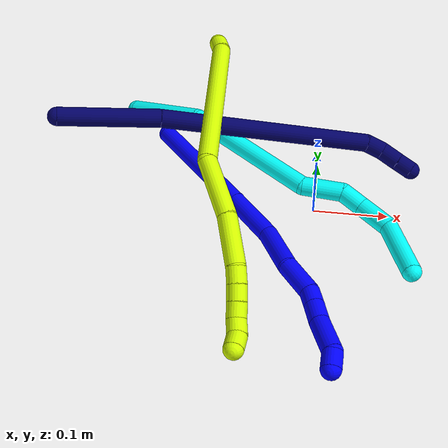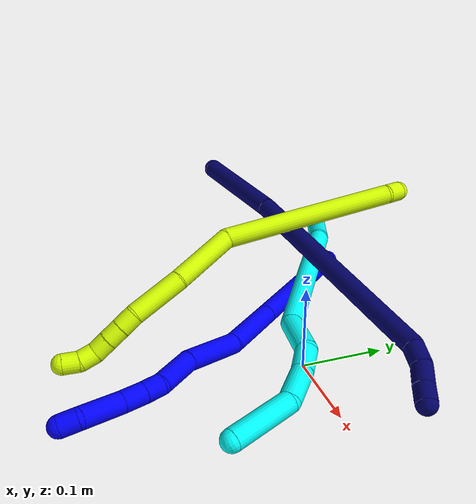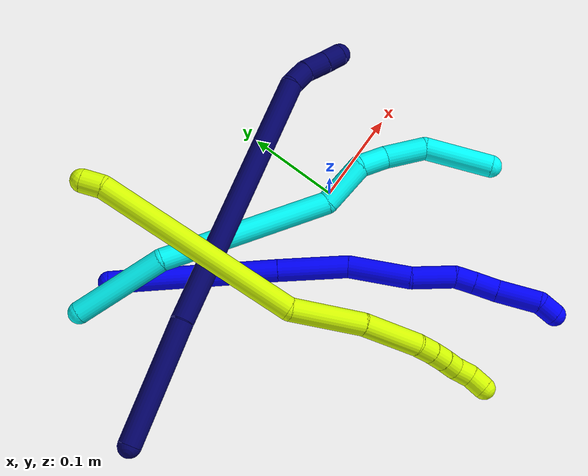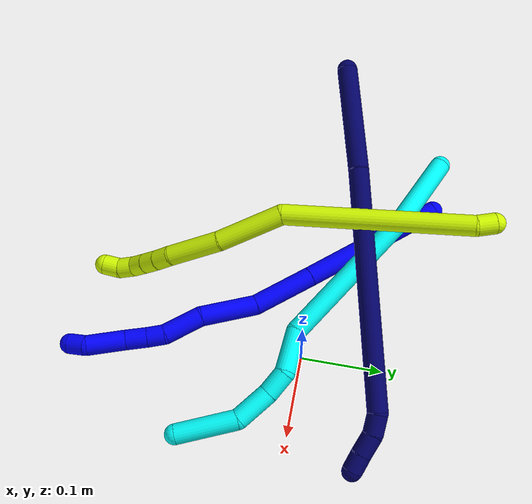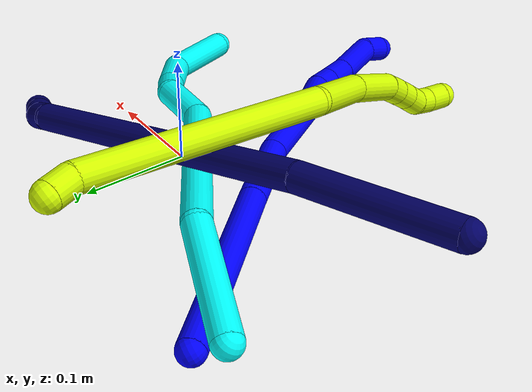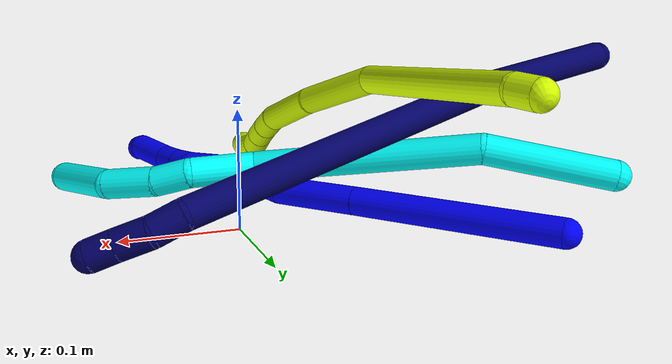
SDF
<sdf version="1.7">
 <world name="default">
  <model name="1">
   <static>0</static>
   <link name="1">
    <collision name="collision-cylinder-e_1_1_4">
     <pose>0.06777 -0.046872 0.042314 0.836464 0.820705 0.382005</pose>
     <geometry><cylinder><radius>0.0125</radius><length>0.185259</length></cylinder></geometry>
     <surface>
      <friction><ode><mu>1.16</mu><mu2>1.16</mu2><slip1>0</slip1><slip2>0</slip2></ode></friction>
      <contact><ode><kp>1e+06</kp><kd>1</kd><max_vel>0</max_vel><min_depth>0.001</min_depth></ode></contact>
     </surface>
    </collision>
    <visual name="visual-cylinder-e_1_1_4">
     <pose>0.06777 -0.046872 0.042314 0.836464 0.820705 0.382005</pose>
     <geometry><cylinder><radius>0.0125</radius><length>0.185259</length></cylinder></geometry>
     <material><ambient>0 0 1 1</ambient></material>
    </visual>
    <collision name="collision-cylinder-e_2_4_5">
     <pose>0.163566 -0.113989 0.102749 0.840682 0.800877 0.374003</pose>
     <geometry><cylinder><radius>0.0125</radius><length>0.078068</length></cylinder></geometry>
     <surface>
      <friction><ode><mu>1.16</mu><mu2>1.16</mu2><slip1>0</slip1><slip2>0</slip2></ode></friction>
      <contact><ode><kp>1e+06</kp><kd>1</kd><max_vel>0</max_vel><min_depth>0.001</min_depth></ode></contact>
     </surface>
    </collision>
    <visual name="visual-cylinder-e_2_4_5">
     <pose>0.163566 -0.113989 0.102749 0.840682 0.800877 0.374003</pose>
     <geometry><cylinder><radius>0.0125</radius><length>0.078068</length></cylinder></geometry>
     <material><ambient>0 0 1 1</ambient></material>
    </visual>
    <collision name="collision-cylinder-e_3_5_6">
     <pose>0.21223 -0.149233 0.144991 0.556344 0.628389 0.185071</pose>
     <geometry><cylinder><radius>0.0125</radius><length>0.070221</length></cylinder></geometry>
     <surface>
      <friction><ode><mu>1.16</mu><mu2>1.16</mu2><slip1>0</slip1><slip2>0</slip2></ode></friction>
      <contact><ode><kp>1e+06</kp><kd>1</kd><max_vel>0</max_vel><min_depth>0.001</min_depth></ode></contact>
     </surface>
    </collision>
    <visual name="visual-cylinder-e_3_5_6">
     <pose>0.21223 -0.149233 0.144991 0.556344 0.628389 0.185071</pose>
     <geometry><cylinder><radius>0.0125</radius><length>0.070221</length></cylinder></geometry>
     <material><ambient>0 0 1 1</ambient></material>
    </visual>
    <collision name="collision-cylinder-e_4_6_7">
     <pose>0.249468 -0.177711 0.180366 0.875044 0.757257 0.36796</pose>
     <geometry><cylinder><radius>0.0125</radius><length>0.048325</length></cylinder></geometry>
     <surface>
      <friction><ode><mu>1.16</mu><mu2>1.16</mu2><slip1>0</slip1><slip2>0</slip2></ode></friction>
      <contact><ode><kp>1e+06</kp><kd>1</kd><max_vel>0</max_vel><min_depth>0.001</min_depth></ode></contact>
     </surface>
    </collision>
    <visual name="visual-cylinder-e_4_6_7">
     <pose>0.249468 -0.177711 0.180366 0.875044 0.757257 0.36796</pose>
     <geometry><cylinder><radius>0.0125</radius><length>0.048325</length></cylinder></geometry>
     <material><ambient>0 0 1 1</ambient></material>
    </visual>
    <collision name="collision-cylinder-e_5_7_8">
     <pose>0.270788 -0.197475 0.199018 0.704364 0.45272 0.168875</pose>
     <geometry><cylinder><radius>0.0125</radius><length>0.02159</length></cylinder></geometry>
     <surface>
      <friction><ode><mu>1.16</mu><mu2>1.16</mu2><slip1>0</slip1><slip2>0</slip2></ode></friction>
      <contact><ode><kp>1e+06</kp><kd>1</kd><max_vel>0</max_vel><min_depth>0.001</min_depth></ode></contact>
     </surface>
    </collision>
    <visual name="visual-cylinder-e_5_7_8">
     <pose>0.270788 -0.197475 0.199018 0.704364 0.45272 0.168875</pose>
     <geometry><cylinder><radius>0.0125</radius><length>0.02159</length></cylinder></geometry>
     <material><ambient>0 0 1 1</ambient></material>
    </visual>
    <collision name="collision-cylinder-e_6_8_9">
     <pose>0.281226 -0.21108 0.216055 0.64933 0.441247 0.150684</pose>
     <geometry><cylinder><radius>0.0125</radius><length>0.02677</length></cylinder></geometry>
     <surface>
      <friction><ode><mu>1.16</mu><mu2>1.16</mu2><slip1>0</slip1><slip2>0</slip2></ode></friction>
      <contact><ode><kp>1e+06</kp><kd>1</kd><max_vel>0</max_vel><min_depth>0.001</min_depth></ode></contact>
     </surface>
    </collision>
    <visual name="visual-cylinder-e_6_8_9">
     <pose>0.281226 -0.21108 0.216055 0.64933 0.441247 0.150684</pose>
     <geometry><cylinder><radius>0.0125</radius><length>0.02677</length></cylinder></geometry>
     <material><ambient>0 0 1 1</ambient></material>
    </visual>
    <collision name="collision-cylinder-e_7_9_10">
     <pose>0.299183 -0.229556 0.243227 0.566821 0.532305 0.158469</pose>
     <geometry><cylinder><radius>0.0125</radius><length>0.048237</length></cylinder></geometry>
     <surface>
      <friction><ode><mu>1.16</mu><mu2>1.16</mu2><slip1>0</slip1><slip2>0</slip2></ode></friction>
      <contact><ode><kp>1e+06</kp><kd>1</kd><max_vel>0</max_vel><min_depth>0.001</min_depth></ode></contact>
     </surface>
    </collision>
    <visual name="visual-cylinder-e_7_9_10">
     <pose>0.299183 -0.229556 0.243227 0.566821 0.532305 0.158469</pose>
     <geometry><cylinder><radius>0.0125</radius><length>0.048237</length></cylinder></geometry>
     <material><ambient>0 0 1 1</ambient></material>
    </visual>
    <collision name="collision-cylinder-e_8_10_2">
     <pose>0.312108 -0.247802 0.268832 0.720371 0.063621 0.023968</pose>
     <geometry><cylinder><radius>0.0125</radius><length>0.021529</length></cylinder></geometry>
     <surface>
      <friction><ode><mu>1.16</mu><mu2>1.16</mu2><slip1>0</slip1><slip2>0</slip2></ode></friction>
      <contact><ode><kp>1e+06</kp><kd>1</kd><max_vel>0</max_vel><min_depth>0.001</min_depth></ode></contact>
     </surface>
    </collision>
    <visual name="visual-cylinder-e_8_10_2">
     <pose>0.312108 -0.247802 0.268832 0.720371 0.063621 0.023968</pose>
     <geometry><cylinder><radius>0.0125</radius><length>0.021529</length></cylinder></geometry>
     <material><ambient>0 0 1 1</ambient></material>
    </visual>
    <collision name="collision-sphere-2">
     <pose>0.312792 -0.254888 0.276906 0 -0 0</pose>
     <geometry><sphere><radius>0.0125</radius></sphere></geometry>
     <surface>
      <friction><ode><mu>1.16</mu><mu2>1.16</mu2><slip1>0</slip1><slip2>0</slip2></ode></friction>
      <contact><ode><kp>1e+06</kp><kd>1</kd><max_vel>0</max_vel><min_depth>0.001</min_depth></ode></contact>
     </surface>
    </collision>
    <visual name="visual-sphere-2">
     <pose>0.312792 -0.254888 0.276906 0 -0 0</pose>
     <geometry><sphere><radius>0.0125</radius></sphere></geometry>
     <material><ambient>0 0 1 1</ambient></material>
    </visual>
    <collision name="collision-sphere-10">
     <pose>0.311424 -0.240715 0.260758 0 -0 0</pose>
     <geometry><sphere><radius>0.0125</radius></sphere></geometry>
     <surface>
      <friction><ode><mu>1.16</mu><mu2>1.16</mu2><slip1>0</slip1><slip2>0</slip2></ode></friction>
      <contact><ode><kp>1e+06</kp><kd>1</kd><max_vel>0</max_vel><min_depth>0.001</min_depth></ode></contact>
     </surface>
    </collision>
    <visual name="visual-sphere-10">
     <pose>0.311424 -0.240715 0.260758 0 -0 0</pose>
     <geometry><sphere><radius>0.0125</radius></sphere></geometry>
     <material><ambient>0 0 1 1</ambient></material>
    </visual>
    <collision name="collision-sphere-9">
     <pose>0.286942 -0.218398 0.225695 0 -0 0</pose>
     <geometry><sphere><radius>0.0125</radius></sphere></geometry>
     <surface>
      <friction><ode><mu>1.16</mu><mu2>1.16</mu2><slip1>0</slip1><slip2>0</slip2></ode></friction>
      <contact><ode><kp>1e+06</kp><kd>1</kd><max_vel>0</max_vel><min_depth>0.001</min_depth></ode></contact>
     </surface>
    </collision>
    <visual name="visual-sphere-9">
     <pose>0.286942 -0.218398 0.225695 0 -0 0</pose>
     <geometry><sphere><radius>0.0125</radius></sphere></geometry>
     <material><ambient>0 0 1 1</ambient></material>
    </visual>
    <collision name="collision-sphere-4">
     <pose>0.13554 -0.093744 0.084627 0 -0 0</pose>
     <geometry><sphere><radius>0.0125</radius></sphere></geometry>
     <surface>
      <friction><ode><mu>1.16</mu><mu2>1.16</mu2><slip1>0</slip1><slip2>0</slip2></ode></friction>
      <contact><ode><kp>1e+06</kp><kd>1</kd><max_vel>0</max_vel><min_depth>0.001</min_depth></ode></contact>
     </surface>
    </collision>
    <visual name="visual-sphere-4">
     <pose>0.13554 -0.093744 0.084627 0 -0 0</pose>
     <geometry><sphere><radius>0.0125</radius></sphere></geometry>
     <material><ambient>0 0 1 1</ambient></material>
    </visual>
    <collision name="collision-sphere-1">
     <geometry><sphere><radius>0.0125</radius></sphere></geometry>
     <surface>
      <friction><ode><mu>1.16</mu><mu2>1.16</mu2><slip1>0</slip1><slip2>0</slip2></ode></friction>
      <contact><ode><kp>1e+06</kp><kd>1</kd><max_vel>0</max_vel><min_depth>0.001</min_depth></ode></contact>
     </surface>
    </collision>
    <visual name="visual-sphere-1">
     <geometry><sphere><radius>0.0125</radius></sphere></geometry>
     <material><ambient>0 0 1 1</ambient></material>
    </visual>
    <collision name="collision-sphere-8">
     <pose>0.27551 -0.203761 0.206416 0 -0 0</pose>
     <geometry><sphere><radius>0.0125</radius></sphere></geometry>
     <surface>
      <friction><ode><mu>1.16</mu><mu2>1.16</mu2><slip1>0</slip1><slip2>0</slip2></ode></friction>
      <contact><ode><kp>1e+06</kp><kd>1</kd><max_vel>0</max_vel><min_depth>0.001</min_depth></ode></contact>
     </surface>
    </collision>
    <visual name="visual-sphere-8">
     <pose>0.27551 -0.203761 0.206416 0 -0 0</pose>
     <geometry><sphere><radius>0.0125</radius></sphere></geometry>
     <material><ambient>0 0 1 1</ambient></material>
    </visual>
    <collision name="collision-sphere-5">
     <pose>0.191591 -0.134234 0.120871 0 -0 0</pose>
     <geometry><sphere><radius>0.0125</radius></sphere></geometry>
     <surface>
      <friction><ode><mu>1.16</mu><mu2>1.16</mu2><slip1>0</slip1><slip2>0</slip2></ode></friction>
      <contact><ode><kp>1e+06</kp><kd>1</kd><max_vel>0</max_vel><min_depth>0.001</min_depth></ode></contact>
     </surface>
    </collision>
    <visual name="visual-sphere-5">
     <pose>0.191591 -0.134234 0.120871 0 -0 0</pose>
     <geometry><sphere><radius>0.0125</radius></sphere></geometry>
     <material><ambient>0 0 1 1</ambient></material>
    </visual>
    <collision name="collision-sphere-6">
     <pose>0.23287 -0.164233 0.169111 0 -0 0</pose>
     <geometry><sphere><radius>0.0125</radius></sphere></geometry>
     <surface>
      <friction><ode><mu>1.16</mu><mu2>1.16</mu2><slip1>0</slip1><slip2>0</slip2></ode></friction>
      <contact><ode><kp>1e+06</kp><kd>1</kd><max_vel>0</max_vel><min_depth>0.001</min_depth></ode></contact>
     </surface>
    </collision>
    <visual name="visual-sphere-6">
     <pose>0.23287 -0.164233 0.169111 0 -0 0</pose>
     <geometry><sphere><radius>0.0125</radius></sphere></geometry>
     <material><ambient>0 0 1 1</ambient></material>
    </visual>
    <collision name="collision-sphere-7">
     <pose>0.266066 -0.191189 0.191621 0 -0 0</pose>
     <geometry><sphere><radius>0.0125</radius></sphere></geometry>
     <surface>
      <friction><ode><mu>1.16</mu><mu2>1.16</mu2><slip1>0</slip1><slip2>0</slip2></ode></friction>
      <contact><ode><kp>1e+06</kp><kd>1</kd><max_vel>0</max_vel><min_depth>0.001</min_depth></ode></contact>
     </surface>
    </collision>
    <visual name="visual-sphere-7">
     <pose>0.266066 -0.191189 0.191621 0 -0 0</pose>
     <geometry><sphere><radius>0.0125</radius></sphere></geometry>
     <material><ambient>0 0 1 1</ambient></material>
    </visual>
    <inertial>
     <pose>0.173618 -0.125944 0.124718 0 -0 0</pose>
     <mass>0.5</mass>
     <inertia>
      <ixx>0.000597</ixx>
      <ixy>0</ixy>
      <ixz>0</ixz>
      <iyy>0.000667</iyy>
      <iyz>0</iyz>
      <izz>-0.000114</izz>
     </inertia>
    </inertial>
   </link>
   <pose>-0.224468 0.135228 0.011497 1.12927 -0.348916 -0.186712</pose>
  </model>
  <model name="3">
   <static>0</static>
   <link name="3">
    <collision name="collision-cylinder-e_1_1_4">
     <pose>0.050292 -0.016679 -0.002165 1.69991 1.24806 1.37308</pose>
     <geometry><cylinder><radius>0.0125</radius><length>0.106059</length></cylinder></geometry>
     <surface>
      <friction><ode><mu>1.16</mu><mu2>1.16</mu2><slip1>0</slip1><slip2>0</slip2></ode></friction>
      <contact><ode><kp>1e+06</kp><kd>1</kd><max_vel>0</max_vel><min_depth>0.001</min_depth></ode></contact>
     </surface>
    </collision>
    <visual name="visual-cylinder-e_1_1_4">
     <pose>0.050292 -0.016679 -0.002165 1.69991 1.24806 1.37308</pose>
     <geometry><cylinder><radius>0.0125</radius><length>0.106059</length></cylinder></geometry>
     <material><ambient>0.003922 1 0.996078 1</ambient></material>
    </visual>
    <collision name="collision-cylinder-e_2_4_5">
     <pose>0.173352 -0.088854 -0.025682 1.93808 0.885702 1.20882</pose>
     <geometry><cylinder><radius>0.0125</radius><length>0.187946</length></cylinder></geometry>
     <surface>
      <friction><ode><mu>1.16</mu><mu2>1.16</mu2><slip1>0</slip1><slip2>0</slip2></ode></friction>
      <contact><ode><kp>1e+06</kp><kd>1</kd><max_vel>0</max_vel><min_depth>0.001</min_depth></ode></contact>
     </surface>
    </collision>
    <visual name="visual-cylinder-e_2_4_5">
     <pose>0.173352 -0.088854 -0.025682 1.93808 0.885702 1.20882</pose>
     <geometry><cylinder><radius>0.0125</radius><length>0.187946</length></cylinder></geometry>
     <material><ambient>0.003922 1 0.996078 1</ambient></material>
    </visual>
    <collision name="collision-cylinder-e_3_5_6">
     <pose>0.270776 -0.14806 -0.057041 2.7865 1.16225 2.60819</pose>
     <geometry><cylinder><radius>0.0125</radius><length>0.053731</length></cylinder></geometry>
     <surface>
      <friction><ode><mu>1.16</mu><mu2>1.16</mu2><slip1>0</slip1><slip2>0</slip2></ode></friction>
      <contact><ode><kp>1e+06</kp><kd>1</kd><max_vel>0</max_vel><min_depth>0.001</min_depth></ode></contact>
     </surface>
    </collision>
    <visual name="visual-cylinder-e_3_5_6">
     <pose>0.270776 -0.14806 -0.057041 2.7865 1.16225 2.60819</pose>
     <geometry><cylinder><radius>0.0125</radius><length>0.053731</length></cylinder></geometry>
     <material><ambient>0.003922 1 0.996078 1</ambient></material>
    </visual>
    <collision name="collision-cylinder-e_4_6_7">
     <pose>0.30627 -0.161033 -0.07269 2.11793 0.785118 1.27033</pose>
     <geometry><cylinder><radius>0.0125</radius><length>0.030669</length></cylinder></geometry>
     <surface>
      <friction><ode><mu>1.16</mu><mu2>1.16</mu2><slip1>0</slip1><slip2>0</slip2></ode></friction>
      <contact><ode><kp>1e+06</kp><kd>1</kd><max_vel>0</max_vel><min_depth>0.001</min_depth></ode></contact>
     </surface>
    </collision>
    <visual name="visual-cylinder-e_4_6_7">
     <pose>0.30627 -0.161033 -0.07269 2.11793 0.785118 1.27033</pose>
     <geometry><cylinder><radius>0.0125</radius><length>0.030669</length></cylinder></geometry>
     <material><ambient>0.003922 1 0.996078 1</ambient></material>
    </visual>
    <collision name="collision-cylinder-e_5_7_8">
     <pose>0.333764 -0.185638 -0.082458 1.83344 0.808941 1.01848</pose>
     <geometry><cylinder><radius>0.0125</radius><length>0.046032</length></cylinder></geometry>
     <surface>
      <friction><ode><mu>1.16</mu><mu2>1.16</mu2><slip1>0</slip1><slip2>0</slip2></ode></friction>
      <contact><ode><kp>1e+06</kp><kd>1</kd><max_vel>0</max_vel><min_depth>0.001</min_depth></ode></contact>
     </surface>
    </collision>
    <visual name="visual-cylinder-e_5_7_8">
     <pose>0.333764 -0.185638 -0.082458 1.83344 0.808941 1.01848</pose>
     <geometry><cylinder><radius>0.0125</radius><length>0.046032</length></cylinder></geometry>
     <material><ambient>0.003922 1 0.996078 1</ambient></material>
    </visual>
    <collision name="collision-cylinder-e_6_8_2">
     <pose>0.365666 -0.235334 -0.082739 1.45937 0.41545 0.372622</pose>
     <geometry><cylinder><radius>0.0125</radius><length>0.075563</length></cylinder></geometry>
     <surface>
      <friction><ode><mu>1.16</mu><mu2>1.16</mu2><slip1>0</slip1><slip2>0</slip2></ode></friction>
      <contact><ode><kp>1e+06</kp><kd>1</kd><max_vel>0</max_vel><min_depth>0.001</min_depth></ode></contact>
     </surface>
    </collision>
    <visual name="visual-cylinder-e_6_8_2">
     <pose>0.365666 -0.235334 -0.082739 1.45937 0.41545 0.372622</pose>
     <geometry><cylinder><radius>0.0125</radius><length>0.075563</length></cylinder></geometry>
     <material><ambient>0.003922 1 0.996078 1</ambient></material>
    </visual>
    <collision name="collision-sphere-2">
     <pose>0.380914 -0.269687 -0.078895 0 -0 0</pose>
     <geometry><sphere><radius>0.0125</radius></sphere></geometry>
     <surface>
      <friction><ode><mu>1.16</mu><mu2>1.16</mu2><slip1>0</slip1><slip2>0</slip2></ode></friction>
      <contact><ode><kp>1e+06</kp><kd>1</kd><max_vel>0</max_vel><min_depth>0.001</min_depth></ode></contact>
     </surface>
    </collision>
    <visual name="visual-sphere-2">
     <pose>0.380914 -0.269687 -0.078895 0 -0 0</pose>
     <geometry><sphere><radius>0.0125</radius></sphere></geometry>
     <material><ambient>0.003922 1 0.996078 1</ambient></material>
    </visual>
    <collision name="collision-sphere-4">
     <pose>0.100584 -0.033358 -0.004331 0 -0 0</pose>
     <geometry><sphere><radius>0.0125</radius></sphere></geometry>
     <surface>
      <friction><ode><mu>1.16</mu><mu2>1.16</mu2><slip1>0</slip1><slip2>0</slip2></ode></friction>
      <contact><ode><kp>1e+06</kp><kd>1</kd><max_vel>0</max_vel><min_depth>0.001</min_depth></ode></contact>
     </surface>
    </collision>
    <visual name="visual-sphere-4">
     <pose>0.100584 -0.033358 -0.004331 0 -0 0</pose>
     <geometry><sphere><radius>0.0125</radius></sphere></geometry>
     <material><ambient>0.003922 1 0.996078 1</ambient></material>
    </visual>
    <collision name="collision-sphere-1">
     <geometry><sphere><radius>0.0125</radius></sphere></geometry>
     <surface>
      <friction><ode><mu>1.16</mu><mu2>1.16</mu2><slip1>0</slip1><slip2>0</slip2></ode></friction>
      <contact><ode><kp>1e+06</kp><kd>1</kd><max_vel>0</max_vel><min_depth>0.001</min_depth></ode></contact>
     </surface>
    </collision>
    <visual name="visual-sphere-1">
     <geometry><sphere><radius>0.0125</radius></sphere></geometry>
     <material><ambient>0.003922 1 0.996078 1</ambient></material>
    </visual>
    <collision name="collision-sphere-8">
     <pose>0.350417 -0.200981 -0.086583 0 -0 0</pose>
     <geometry><sphere><radius>0.0125</radius></sphere></geometry>
     <surface>
      <friction><ode><mu>1.16</mu><mu2>1.16</mu2><slip1>0</slip1><slip2>0</slip2></ode></friction>
      <contact><ode><kp>1e+06</kp><kd>1</kd><max_vel>0</max_vel><min_depth>0.001</min_depth></ode></contact>
     </surface>
    </collision>
    <visual name="visual-sphere-8">
     <pose>0.350417 -0.200981 -0.086583 0 -0 0</pose>
     <geometry><sphere><radius>0.0125</radius></sphere></geometry>
     <material><ambient>0.003922 1 0.996078 1</ambient></material>
    </visual>
    <collision name="collision-sphere-5">
     <pose>0.246121 -0.144349 -0.047033 0 -0 0</pose>
     <geometry><sphere><radius>0.0125</radius></sphere></geometry>
     <surface>
      <friction><ode><mu>1.16</mu><mu2>1.16</mu2><slip1>0</slip1><slip2>0</slip2></ode></friction>
      <contact><ode><kp>1e+06</kp><kd>1</kd><max_vel>0</max_vel><min_depth>0.001</min_depth></ode></contact>
     </surface>
    </collision>
    <visual name="visual-sphere-5">
     <pose>0.246121 -0.144349 -0.047033 0 -0 0</pose>
     <geometry><sphere><radius>0.0125</radius></sphere></geometry>
     <material><ambient>0.003922 1 0.996078 1</ambient></material>
    </visual>
    <collision name="collision-sphere-6">
     <pose>0.29543 -0.151771 -0.067048 0 -0 0</pose>
     <geometry><sphere><radius>0.0125</radius></sphere></geometry>
     <surface>
      <friction><ode><mu>1.16</mu><mu2>1.16</mu2><slip1>0</slip1><slip2>0</slip2></ode></friction>
      <contact><ode><kp>1e+06</kp><kd>1</kd><max_vel>0</max_vel><min_depth>0.001</min_depth></ode></contact>
     </surface>
    </collision>
    <visual name="visual-sphere-6">
     <pose>0.29543 -0.151771 -0.067048 0 -0 0</pose>
     <geometry><sphere><radius>0.0125</radius></sphere></geometry>
     <material><ambient>0.003922 1 0.996078 1</ambient></material>
    </visual>
    <collision name="collision-sphere-7">
     <pose>0.31711 -0.170296 -0.078333 0 -0 0</pose>
     <geometry><sphere><radius>0.0125</radius></sphere></geometry>
     <surface>
      <friction><ode><mu>1.16</mu><mu2>1.16</mu2><slip1>0</slip1><slip2>0</slip2></ode></friction>
      <contact><ode><kp>1e+06</kp><kd>1</kd><max_vel>0</max_vel><min_depth>0.001</min_depth></ode></contact>
     </surface>
    </collision>
    <visual name="visual-sphere-7">
     <pose>0.31711 -0.170296 -0.078333 0 -0 0</pose>
     <geometry><sphere><radius>0.0125</radius></sphere></geometry>
     <material><ambient>0.003922 1 0.996078 1</ambient></material>
    </visual>
    <inertial>
     <pose>0.209703 -0.115381 -0.040797 0 -0 0</pose>
     <mass>0.5</mass>
     <inertia>
      <ixx>0.000582</ixx>
      <ixy>0</ixy>
      <ixz>0</ixz>
      <iyy>0.000798</iyy>
      <iyz>0</iyz>
      <izz>-0.000168</izz>
     </inertia>
    </inertial>
   </link>
   <pose>-0.267892 0.133695 0.053605 0.406775 -0.373063 -0.110128</pose>
  </model>
  <model name="7">
   <static>0</static>
   <link name="7">
    <collision name="collision-cylinder-e_1_1_4">
     <pose>0.02952 0.025543 -0.055235 -2.70844 0.451642 -1.61397</pose>
     <geometry><cylinder><radius>0.0125</radius><length>0.135275</length></cylinder></geometry>
     <surface>
      <friction><ode><mu>1.16</mu><mu2>1.16</mu2><slip1>0</slip1><slip2>0</slip2></ode></friction>
      <contact><ode><kp>1e+06</kp><kd>1</kd><max_vel>0</max_vel><min_depth>0.001</min_depth></ode></contact>
     </surface>
    </collision>
    <visual name="visual-cylinder-e_1_1_4">
     <pose>0.02952 0.025543 -0.055235 -2.70844 0.451642 -1.61397</pose>
     <geometry><cylinder><radius>0.0125</radius><length>0.135275</length></cylinder></geometry>
     <material><ambient>0.003922 0 0.403922 1</ambient></material>
    </visual>
    <collision name="collision-cylinder-e_2_4_5">
     <pose>0.116095 0.093927 -0.237444 -2.81619 0.40252 -1.78654</pose>
     <geometry><cylinder><radius>0.0125</radius><length>0.291293</length></cylinder></geometry>
     <surface>
      <friction><ode><mu>1.16</mu><mu2>1.16</mu2><slip1>0</slip1><slip2>0</slip2></ode></friction>
      <contact><ode><kp>1e+06</kp><kd>1</kd><max_vel>0</max_vel><min_depth>0.001</min_depth></ode></contact>
     </surface>
    </collision>
    <visual name="visual-cylinder-e_2_4_5">
     <pose>0.116095 0.093927 -0.237444 -2.81619 0.40252 -1.78654</pose>
     <geometry><cylinder><radius>0.0125</radius><length>0.291293</length></cylinder></geometry>
     <material><ambient>0.003922 0 0.403922 1</ambient></material>
    </visual>
    <collision name="collision-cylinder-e_3_5_6">
     <pose>0.178784 0.136019 -0.375676 3.0752 0.463036 2.86169</pose>
     <geometry><cylinder><radius>0.0125</radius><length>0.025223</length></cylinder></geometry>
     <surface>
      <friction><ode><mu>1.16</mu><mu2>1.16</mu2><slip1>0</slip1><slip2>0</slip2></ode></friction>
      <contact><ode><kp>1e+06</kp><kd>1</kd><max_vel>0</max_vel><min_depth>0.001</min_depth></ode></contact>
     </surface>
    </collision>
    <visual name="visual-cylinder-e_3_5_6">
     <pose>0.178784 0.136019 -0.375676 3.0752 0.463036 2.86169</pose>
     <geometry><cylinder><radius>0.0125</radius><length>0.025223</length></cylinder></geometry>
     <material><ambient>0.003922 0 0.403922 1</ambient></material>
    </visual>
    <collision name="collision-cylinder-e_4_6_7">
     <pose>0.192556 0.131708 -0.396764 2.79395 0.661499 2.19616</pose>
     <geometry><cylinder><radius>0.0125</radius><length>0.026498</length></cylinder></geometry>
     <surface>
      <friction><ode><mu>1.16</mu><mu2>1.16</mu2><slip1>0</slip1><slip2>0</slip2></ode></friction>
      <contact><ode><kp>1e+06</kp><kd>1</kd><max_vel>0</max_vel><min_depth>0.001</min_depth></ode></contact>
     </surface>
    </collision>
    <visual name="visual-cylinder-e_4_6_7">
     <pose>0.192556 0.131708 -0.396764 2.79395 0.661499 2.19616</pose>
     <geometry><cylinder><radius>0.0125</radius><length>0.026498</length></cylinder></geometry>
     <material><ambient>0.003922 0 0.403922 1</ambient></material>
    </visual>
    <collision name="collision-cylinder-e_5_7_2">
     <pose>0.207116 0.125516 -0.414941 2.83632 0.632964 2.26331</pose>
     <geometry><cylinder><radius>0.0125</radius><length>0.02171</length></cylinder></geometry>
     <surface>
      <friction><ode><mu>1.16</mu><mu2>1.16</mu2><slip1>0</slip1><slip2>0</slip2></ode></friction>
      <contact><ode><kp>1e+06</kp><kd>1</kd><max_vel>0</max_vel><min_depth>0.001</min_depth></ode></contact>
     </surface>
    </collision>
    <visual name="visual-cylinder-e_5_7_2">
     <pose>0.207116 0.125516 -0.414941 2.83632 0.632964 2.26331</pose>
     <geometry><cylinder><radius>0.0125</radius><length>0.02171</length></cylinder></geometry>
     <material><ambient>0.003922 0 0.403922 1</ambient></material>
    </visual>
    <collision name="collision-sphere-2">
     <pose>0.213537 0.122886 -0.423289 0 -0 0</pose>
     <geometry><sphere><radius>0.0125</radius></sphere></geometry>
     <surface>
      <friction><ode><mu>1.16</mu><mu2>1.16</mu2><slip1>0</slip1><slip2>0</slip2></ode></friction>
      <contact><ode><kp>1e+06</kp><kd>1</kd><max_vel>0</max_vel><min_depth>0.001</min_depth></ode></contact>
     </surface>
    </collision>
    <visual name="visual-sphere-2">
     <pose>0.213537 0.122886 -0.423289 0 -0 0</pose>
     <geometry><sphere><radius>0.0125</radius></sphere></geometry>
     <material><ambient>0.003922 0 0.403922 1</ambient></material>
    </visual>
    <collision name="collision-sphere-7">
     <pose>0.200695 0.128147 -0.406594 0 -0 0</pose>
     <geometry><sphere><radius>0.0125</radius></sphere></geometry>
     <surface>
      <friction><ode><mu>1.16</mu><mu2>1.16</mu2><slip1>0</slip1><slip2>0</slip2></ode></friction>
      <contact><ode><kp>1e+06</kp><kd>1</kd><max_vel>0</max_vel><min_depth>0.001</min_depth></ode></contact>
     </surface>
    </collision>
    <visual name="visual-sphere-7">
     <pose>0.200695 0.128147 -0.406594 0 -0 0</pose>
     <geometry><sphere><radius>0.0125</radius></sphere></geometry>
     <material><ambient>0.003922 0 0.403922 1</ambient></material>
    </visual>
    <collision name="collision-sphere-6">
     <pose>0.184417 0.13527 -0.386935 0 -0 0</pose>
     <geometry><sphere><radius>0.0125</radius></sphere></geometry>
     <surface>
      <friction><ode><mu>1.16</mu><mu2>1.16</mu2><slip1>0</slip1><slip2>0</slip2></ode></friction>
      <contact><ode><kp>1e+06</kp><kd>1</kd><max_vel>0</max_vel><min_depth>0.001</min_depth></ode></contact>
     </surface>
    </collision>
    <visual name="visual-sphere-6">
     <pose>0.184417 0.13527 -0.386935 0 -0 0</pose>
     <geometry><sphere><radius>0.0125</radius></sphere></geometry>
     <material><ambient>0.003922 0 0.403922 1</ambient></material>
    </visual>
    <collision name="collision-sphere-5">
     <pose>0.173151 0.136767 -0.364418 0 -0 0</pose>
     <geometry><sphere><radius>0.0125</radius></sphere></geometry>
     <surface>
      <friction><ode><mu>1.16</mu><mu2>1.16</mu2><slip1>0</slip1><slip2>0</slip2></ode></friction>
      <contact><ode><kp>1e+06</kp><kd>1</kd><max_vel>0</max_vel><min_depth>0.001</min_depth></ode></contact>
     </surface>
    </collision>
    <visual name="visual-sphere-5">
     <pose>0.173151 0.136767 -0.364418 0 -0 0</pose>
     <geometry><sphere><radius>0.0125</radius></sphere></geometry>
     <material><ambient>0.003922 0 0.403922 1</ambient></material>
    </visual>
    <collision name="collision-sphere-1">
     <geometry><sphere><radius>0.0125</radius></sphere></geometry>
     <surface>
      <friction><ode><mu>1.16</mu><mu2>1.16</mu2><slip1>0</slip1><slip2>0</slip2></ode></friction>
      <contact><ode><kp>1e+06</kp><kd>1</kd><max_vel>0</max_vel><min_depth>0.001</min_depth></ode></contact>
     </surface>
    </collision>
    <visual name="visual-sphere-1">
     <geometry><sphere><radius>0.0125</radius></sphere></geometry>
     <material><ambient>0.003922 0 0.403922 1</ambient></material>
    </visual>
    <collision name="collision-sphere-4">
     <pose>0.05904 0.051087 -0.11047 0 -0 0</pose>
     <geometry><sphere><radius>0.0125</radius></sphere></geometry>
     <surface>
      <friction><ode><mu>1.16</mu><mu2>1.16</mu2><slip1>0</slip1><slip2>0</slip2></ode></friction>
      <contact><ode><kp>1e+06</kp><kd>1</kd><max_vel>0</max_vel><min_depth>0.001</min_depth></ode></contact>
     </surface>
    </collision>
    <visual name="visual-sphere-4">
     <pose>0.05904 0.051087 -0.11047 0 -0 0</pose>
     <geometry><sphere><radius>0.0125</radius></sphere></geometry>
     <material><ambient>0.003922 0 0.403922 1</ambient></material>
    </visual>
    <inertial>
     <pose>0.103839 0.080923 -0.211271 0 -0 0</pose>
     <mass>0.5</mass>
     <inertia>
      <ixx>-0.002452</ixx>
      <ixy>0</ixy>
      <ixz>0</ixz>
      <iyy>-0.001313</iyy>
      <iyz>0</iyz>
      <izz>-0.001628</izz>
     </inertia>
    </inertial>
   </link>
   <pose>-0.339829 -0.001338 0.12835 0.725571 -0.481065 -0.721463</pose>
  </model>
  <model name="15">
   <static>0</static>
   <link name="15">
    <collision name="collision-cylinder-e_1_1_4">
     <pose>0.00128 -0.005943 0.009599 0.554397 0.112926 0.032162</pose>
     <geometry><cylinder><radius>0.0125</radius><length>0.022724</length></cylinder></geometry>
     <surface>
      <friction><ode><mu>1.16</mu><mu2>1.16</mu2><slip1>0</slip1><slip2>0</slip2></ode></friction>
      <contact><ode><kp>1e+06</kp><kd>1</kd><max_vel>0</max_vel><min_depth>0.001</min_depth></ode></contact>
     </surface>
    </collision>
    <visual name="visual-cylinder-e_1_1_4">
     <pose>0.00128 -0.005943 0.009599 0.554397 0.112926 0.032162</pose>
     <geometry><cylinder><radius>0.0125</radius><length>0.022724</length></cylinder></geometry>
     <material><ambient>0.835294 1 0 1</ambient></material>
    </visual>
    <collision name="collision-cylinder-e_2_4_5">
     <pose>-0.019874 -0.066284 0.115794 0.512878 -0.199676 -0.05252</pose>
     <geometry><cylinder><radius>0.0125</radius><length>0.226214</length></cylinder></geometry>
     <surface>
      <friction><ode><mu>1.16</mu><mu2>1.16</mu2><slip1>0</slip1><slip2>0</slip2></ode></friction>
      <contact><ode><kp>1e+06</kp><kd>1</kd><max_vel>0</max_vel><min_depth>0.001</min_depth></ode></contact>
     </surface>
    </collision>
    <visual name="visual-cylinder-e_2_4_5">
     <pose>-0.019874 -0.066284 0.115794 0.512878 -0.199676 -0.05252</pose>
     <geometry><cylinder><radius>0.0125</radius><length>0.226214</length></cylinder></geometry>
     <material><ambient>0.835294 1 0 1</ambient></material>
    </visual>
    <collision name="collision-cylinder-e_3_5_6">
     <pose>-0.043168 -0.153906 0.23698 0.933637 -0.020781 -0.010473</pose>
     <geometry><cylinder><radius>0.0125</radius><length>0.082687</length></cylinder></geometry>
     <surface>
      <friction><ode><mu>1.16</mu><mu2>1.16</mu2><slip1>0</slip1><slip2>0</slip2></ode></friction>
      <contact><ode><kp>1e+06</kp><kd>1</kd><max_vel>0</max_vel><min_depth>0.001</min_depth></ode></contact>
     </surface>
    </collision>
    <visual name="visual-cylinder-e_3_5_6">
     <pose>-0.043168 -0.153906 0.23698 0.933637 -0.020781 -0.010473</pose>
     <geometry><cylinder><radius>0.0125</radius><length>0.082687</length></cylinder></geometry>
     <material><ambient>0.835294 1 0 1</ambient></material>
    </visual>
    <collision name="collision-cylinder-e_4_6_7">
     <pose>-0.049749 -0.212665 0.282026 0.895416 -0.173122 -0.083299</pose>
     <geometry><cylinder><radius>0.0125</radius><length>0.066428</length></cylinder></geometry>
     <surface>
      <friction><ode><mu>1.16</mu><mu2>1.16</mu2><slip1>0</slip1><slip2>0</slip2></ode></friction>
      <contact><ode><kp>1e+06</kp><kd>1</kd><max_vel>0</max_vel><min_depth>0.001</min_depth></ode></contact>
     </surface>
    </collision>
    <visual name="visual-cylinder-e_4_6_7">
     <pose>-0.049749 -0.212665 0.282026 0.895416 -0.173122 -0.083299</pose>
     <geometry><cylinder><radius>0.0125</radius><length>0.066428</length></cylinder></geometry>
     <material><ambient>0.835294 1 0 1</ambient></material>
    </visual>
    <collision name="collision-cylinder-e_5_7_8">
     <pose>-0.059213 -0.246871 0.307652 1.03296 -0.355034 -0.203066</pose>
     <geometry><cylinder><radius>0.0125</radius><length>0.021536</length></cylinder></geometry>
     <surface>
      <friction><ode><mu>1.16</mu><mu2>1.16</mu2><slip1>0</slip1><slip2>0</slip2></ode></friction>
      <contact><ode><kp>1e+06</kp><kd>1</kd><max_vel>0</max_vel><min_depth>0.001</min_depth></ode></contact>
     </surface>
    </collision>
    <visual name="visual-cylinder-e_5_7_8">
     <pose>-0.059213 -0.246871 0.307652 1.03296 -0.355034 -0.203066</pose>
     <geometry><cylinder><radius>0.0125</radius><length>0.021536</length></cylinder></geometry>
     <material><ambient>0.835294 1 0 1</ambient></material>
    </visual>
    <collision name="collision-cylinder-e_6_8_9">
     <pose>-0.067019 -0.263362 0.317557 1.0266 -0.418221 -0.238116</pose>
     <geometry><cylinder><radius>0.0125</radius><length>0.020005</length></cylinder></geometry>
     <surface>
      <friction><ode><mu>1.16</mu><mu2>1.16</mu2><slip1>0</slip1><slip2>0</slip2></ode></friction>
      <contact><ode><kp>1e+06</kp><kd>1</kd><max_vel>0</max_vel><min_depth>0.001</min_depth></ode></contact>
     </surface>
    </collision>
    <visual name="visual-cylinder-e_6_8_9">
     <pose>-0.067019 -0.263362 0.317557 1.0266 -0.418221 -0.238116</pose>
     <geometry><cylinder><radius>0.0125</radius><length>0.020005</length></cylinder></geometry>
     <material><ambient>0.835294 1 0 1</ambient></material>
    </visual>
    <collision name="collision-cylinder-e_7_9_10">
     <pose>-0.075732 -0.278951 0.32682 1.04286 -0.477206 -0.277661</pose>
     <geometry><cylinder><radius>0.0125</radius><length>0.020251</length></cylinder></geometry>
     <surface>
      <friction><ode><mu>1.16</mu><mu2>1.16</mu2><slip1>0</slip1><slip2>0</slip2></ode></friction>
      <contact><ode><kp>1e+06</kp><kd>1</kd><max_vel>0</max_vel><min_depth>0.001</min_depth></ode></contact>
     </surface>
    </collision>
    <visual name="visual-cylinder-e_7_9_10">
     <pose>-0.075732 -0.278951 0.32682 1.04286 -0.477206 -0.277661</pose>
     <geometry><cylinder><radius>0.0125</radius><length>0.020251</length></cylinder></geometry>
     <material><ambient>0.835294 1 0 1</ambient></material>
    </visual>
    <collision name="collision-cylinder-e_8_10_11">
     <pose>-0.082541 -0.293389 0.338561 0.746318 -0.216327 -0.084973</pose>
     <geometry><cylinder><radius>0.0125</radius><length>0.02011</length></cylinder></geometry>
     <surface>
      <friction><ode><mu>1.16</mu><mu2>1.16</mu2><slip1>0</slip1><slip2>0</slip2></ode></friction>
      <contact><ode><kp>1e+06</kp><kd>1</kd><max_vel>0</max_vel><min_depth>0.001</min_depth></ode></contact>
     </surface>
    </collision>
    <visual name="visual-cylinder-e_8_10_11">
     <pose>-0.082541 -0.293389 0.338561 0.746318 -0.216327 -0.084973</pose>
     <geometry><cylinder><radius>0.0125</radius><length>0.02011</length></cylinder></geometry>
     <material><ambient>0.835294 1 0 1</ambient></material>
    </visual>
    <collision name="collision-cylinder-e_9_11_2">
     <pose>-0.087407 -0.303446 0.354806 0.358929 -0.273588 -0.049935</pose>
     <geometry><cylinder><radius>0.0125</radius><length>0.020045</length></cylinder></geometry>
     <surface>
      <friction><ode><mu>1.16</mu><mu2>1.16</mu2><slip1>0</slip1><slip2>0</slip2></ode></friction>
      <contact><ode><kp>1e+06</kp><kd>1</kd><max_vel>0</max_vel><min_depth>0.001</min_depth></ode></contact>
     </surface>
    </collision>
    <visual name="visual-cylinder-e_9_11_2">
     <pose>-0.087407 -0.303446 0.354806 0.358929 -0.273588 -0.049935</pose>
     <geometry><cylinder><radius>0.0125</radius><length>0.020045</length></cylinder></geometry>
     <material><ambient>0.835294 1 0 1</ambient></material>
    </visual>
    <collision name="collision-sphere-2">
     <pose>-0.090115 -0.306836 0.363841 0 -0 0</pose>
     <geometry><sphere><radius>0.0125</radius></sphere></geometry>
     <surface>
      <friction><ode><mu>1.16</mu><mu2>1.16</mu2><slip1>0</slip1><slip2>0</slip2></ode></friction>
      <contact><ode><kp>1e+06</kp><kd>1</kd><max_vel>0</max_vel><min_depth>0.001</min_depth></ode></contact>
     </surface>
    </collision>
    <visual name="visual-sphere-2">
     <pose>-0.090115 -0.306836 0.363841 0 -0 0</pose>
     <geometry><sphere><radius>0.0125</radius></sphere></geometry>
     <material><ambient>0.835294 1 0 1</ambient></material>
    </visual>
    <collision name="collision-sphere-11">
     <pose>-0.084699 -0.300056 0.345772 0 -0 0</pose>
     <geometry><sphere><radius>0.0125</radius></sphere></geometry>
     <surface>
      <friction><ode><mu>1.16</mu><mu2>1.16</mu2><slip1>0</slip1><slip2>0</slip2></ode></friction>
      <contact><ode><kp>1e+06</kp><kd>1</kd><max_vel>0</max_vel><min_depth>0.001</min_depth></ode></contact>
     </surface>
    </collision>
    <visual name="visual-sphere-11">
     <pose>-0.084699 -0.300056 0.345772 0 -0 0</pose>
     <geometry><sphere><radius>0.0125</radius></sphere></geometry>
     <material><ambient>0.835294 1 0 1</ambient></material>
    </visual>
    <collision name="collision-sphere-10">
     <pose>-0.080383 -0.286721 0.331351 0 -0 0</pose>
     <geometry><sphere><radius>0.0125</radius></sphere></geometry>
     <surface>
      <friction><ode><mu>1.16</mu><mu2>1.16</mu2><slip1>0</slip1><slip2>0</slip2></ode></friction>
      <contact><ode><kp>1e+06</kp><kd>1</kd><max_vel>0</max_vel><min_depth>0.001</min_depth></ode></contact>
     </surface>
    </collision>
    <visual name="visual-sphere-10">
     <pose>-0.080383 -0.286721 0.331351 0 -0 0</pose>
     <geometry><sphere><radius>0.0125</radius></sphere></geometry>
     <material><ambient>0.835294 1 0 1</ambient></material>
    </visual>
    <collision name="collision-sphere-9">
     <pose>-0.071081 -0.271182 0.322289 0 -0 0</pose>
     <geometry><sphere><radius>0.0125</radius></sphere></geometry>
     <surface>
      <friction><ode><mu>1.16</mu><mu2>1.16</mu2><slip1>0</slip1><slip2>0</slip2></ode></friction>
      <contact><ode><kp>1e+06</kp><kd>1</kd><max_vel>0</max_vel><min_depth>0.001</min_depth></ode></contact>
     </surface>
    </collision>
    <visual name="visual-sphere-9">
     <pose>-0.071081 -0.271182 0.322289 0 -0 0</pose>
     <geometry><sphere><radius>0.0125</radius></sphere></geometry>
     <material><ambient>0.835294 1 0 1</ambient></material>
    </visual>
    <collision name="collision-sphere-4">
     <pose>0.002561 -0.011887 0.019198 0 -0 0</pose>
     <geometry><sphere><radius>0.0125</radius></sphere></geometry>
     <surface>
      <friction><ode><mu>1.16</mu><mu2>1.16</mu2><slip1>0</slip1><slip2>0</slip2></ode></friction>
      <contact><ode><kp>1e+06</kp><kd>1</kd><max_vel>0</max_vel><min_depth>0.001</min_depth></ode></contact>
     </surface>
    </collision>
    <visual name="visual-sphere-4">
     <pose>0.002561 -0.011887 0.019198 0 -0 0</pose>
     <geometry><sphere><radius>0.0125</radius></sphere></geometry>
     <material><ambient>0.835294 1 0 1</ambient></material>
    </visual>
    <collision name="collision-sphere-1">
     <geometry><sphere><radius>0.0125</radius></sphere></geometry>
     <surface>
      <friction><ode><mu>1.16</mu><mu2>1.16</mu2><slip1>0</slip1><slip2>0</slip2></ode></friction>
      <contact><ode><kp>1e+06</kp><kd>1</kd><max_vel>0</max_vel><min_depth>0.001</min_depth></ode></contact>
     </surface>
    </collision>
    <visual name="visual-sphere-1">
     <geometry><sphere><radius>0.0125</radius></sphere></geometry>
     <material><ambient>0.835294 1 0 1</ambient></material>
    </visual>
    <collision name="collision-sphere-8">
     <pose>-0.062956 -0.255542 0.312825 0 -0 0</pose>
     <geometry><sphere><radius>0.0125</radius></sphere></geometry>
     <surface>
      <friction><ode><mu>1.16</mu><mu2>1.16</mu2><slip1>0</slip1><slip2>0</slip2></ode></friction>
      <contact><ode><kp>1e+06</kp><kd>1</kd><max_vel>0</max_vel><min_depth>0.001</min_depth></ode></contact>
     </surface>
    </collision>
    <visual name="visual-sphere-8">
     <pose>-0.062956 -0.255542 0.312825 0 -0 0</pose>
     <geometry><sphere><radius>0.0125</radius></sphere></geometry>
     <material><ambient>0.835294 1 0 1</ambient></material>
    </visual>
    <collision name="collision-sphere-5">
     <pose>-0.042309 -0.120682 0.21239 0 -0 0</pose>
     <geometry><sphere><radius>0.0125</radius></sphere></geometry>
     <surface>
      <friction><ode><mu>1.16</mu><mu2>1.16</mu2><slip1>0</slip1><slip2>0</slip2></ode></friction>
      <contact><ode><kp>1e+06</kp><kd>1</kd><max_vel>0</max_vel><min_depth>0.001</min_depth></ode></contact>
     </surface>
    </collision>
    <visual name="visual-sphere-5">
     <pose>-0.042309 -0.120682 0.21239 0 -0 0</pose>
     <geometry><sphere><radius>0.0125</radius></sphere></geometry>
     <material><ambient>0.835294 1 0 1</ambient></material>
    </visual>
    <collision name="collision-sphere-6">
     <pose>-0.044028 -0.18713 0.261571 0 -0 0</pose>
     <geometry><sphere><radius>0.0125</radius></sphere></geometry>
     <surface>
      <friction><ode><mu>1.16</mu><mu2>1.16</mu2><slip1>0</slip1><slip2>0</slip2></ode></friction>
      <contact><ode><kp>1e+06</kp><kd>1</kd><max_vel>0</max_vel><min_depth>0.001</min_depth></ode></contact>
     </surface>
    </collision>
    <visual name="visual-sphere-6">
     <pose>-0.044028 -0.18713 0.261571 0 -0 0</pose>
     <geometry><sphere><radius>0.0125</radius></sphere></geometry>
     <material><ambient>0.835294 1 0 1</ambient></material>
    </visual>
    <collision name="collision-sphere-7">
     <pose>-0.05547 -0.2382 0.30248 0 -0 0</pose>
     <geometry><sphere><radius>0.0125</radius></sphere></geometry>
     <surface>
      <friction><ode><mu>1.16</mu><mu2>1.16</mu2><slip1>0</slip1><slip2>0</slip2></ode></friction>
      <contact><ode><kp>1e+06</kp><kd>1</kd><max_vel>0</max_vel><min_depth>0.001</min_depth></ode></contact>
     </surface>
    </collision>
    <visual name="visual-sphere-7">
     <pose>-0.05547 -0.2382 0.30248 0 -0 0</pose>
     <geometry><sphere><radius>0.0125</radius></sphere></geometry>
     <material><ambient>0.835294 1 0 1</ambient></material>
    </visual>
    <inertial>
     <pose>-0.037805 -0.140398 0.196518 0 -0 0</pose>
     <mass>0.5</mass>
     <inertia>
      <ixx>0.000977</ixx>
      <ixy>0</ixy>
      <ixz>0</ixz>
      <iyy>0.000828</iyy>
      <iyz>0</iyz>
      <izz>0.000765</izz>
     </inertia>
    </inertial>
   </link>
   <pose>-0.155686 0.198283 0.134296 1.05083 -0.611575 0.224894</pose>
  </model>
 </world>
</sdf>
